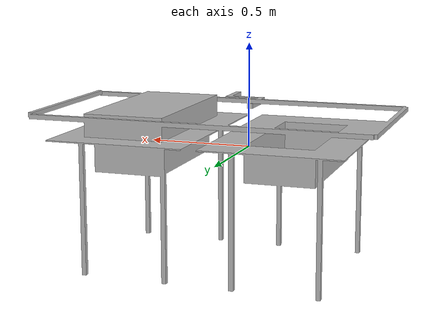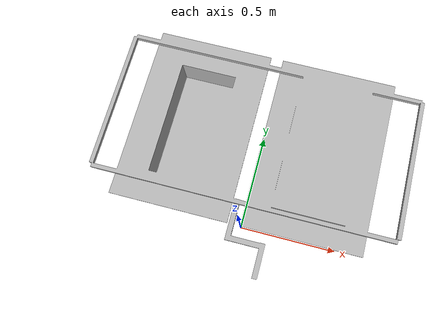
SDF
<?xml version="1.0" ?>
<sdf version="1.5">

<model name="wolf_bin">
  <static>true</static>
  <link name="wolf_bin_link">

  <visual name="wolf_bin">
    <pose>0 0 0 0 0 0</pose>
    <geometry>
      <mesh><uri>model://wolf_bin/meshes/wolf.obj</uri><scale>1 1 1</scale></mesh>
    </geometry>
  </visual>

  <collision name="wolf_bin">
    <pose>0 0 0 0 0 0</pose>
    <geometry>
      <mesh><uri>model://wolf_bin/meshes/wolf.obj</uri><scale>1 1 1</scale></mesh>
    </geometry>
  </collision>

  </link>
</model>
</sdf>
